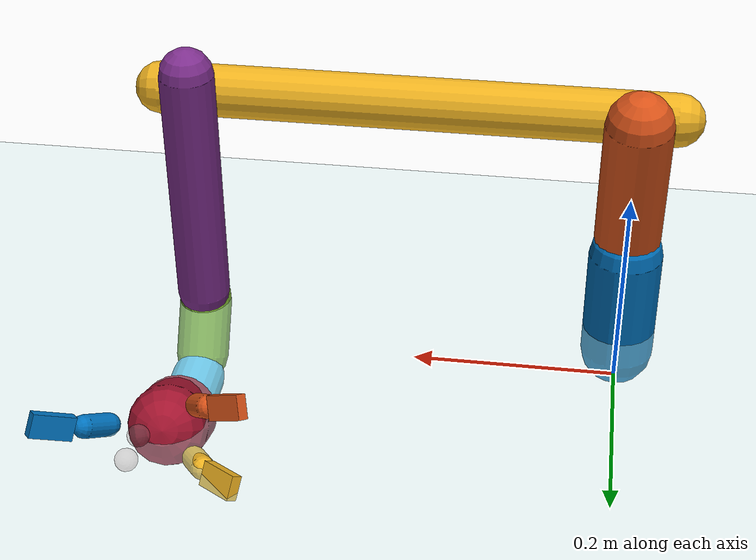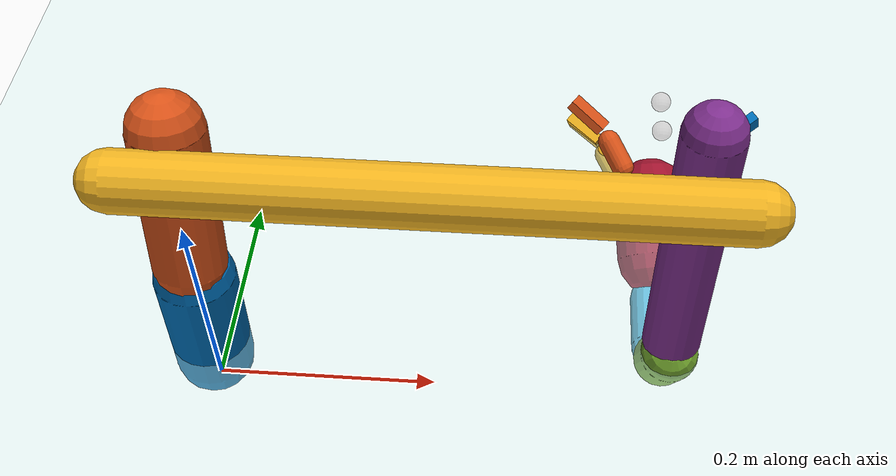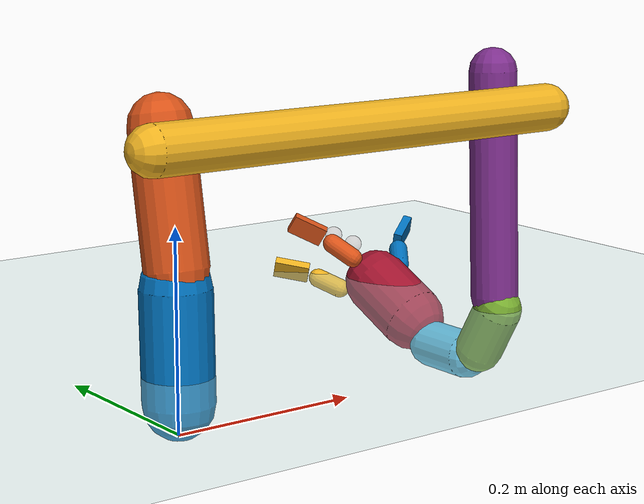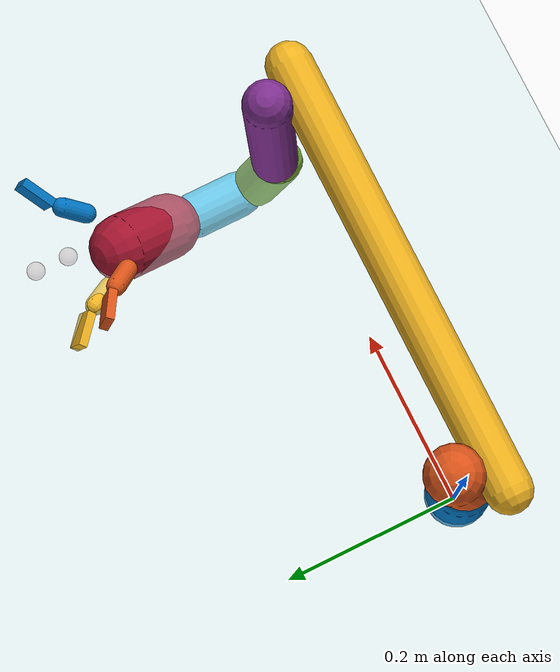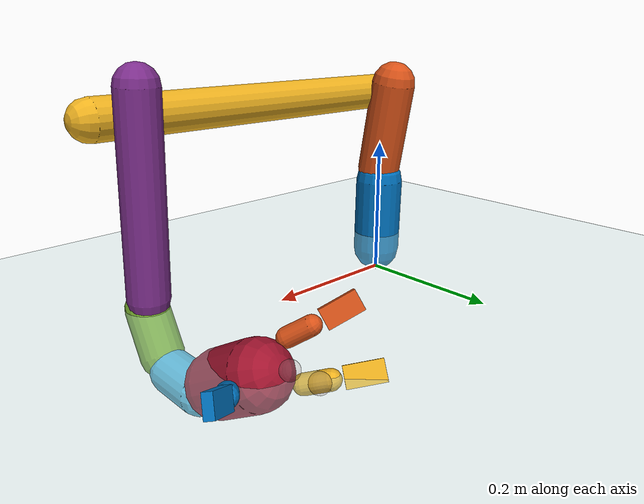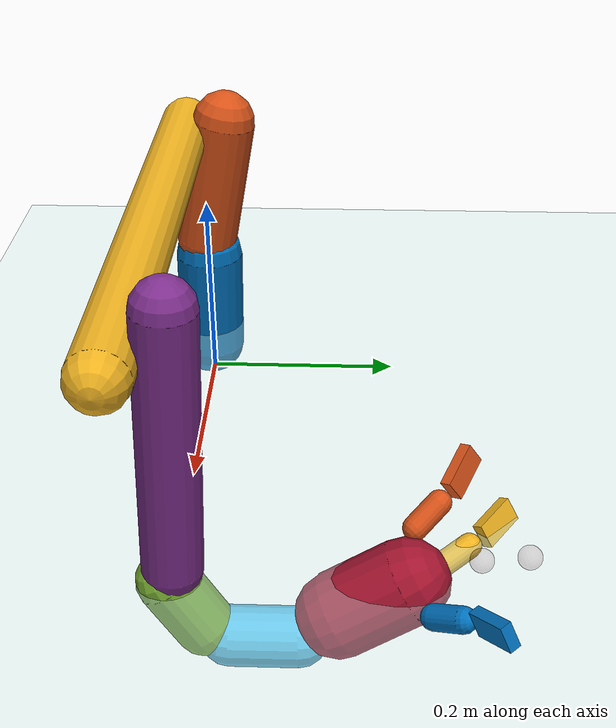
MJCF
<mujoco model='jaco'>
  <compiler coordinate='local' angle='radian' eulerseq='yxz'/>

  <contact>
    <exclude body1='b_base' body2='b_1'/>
    <exclude body1='b_finger_1' body2='b_finger_2'/>
    <exclude body1='b_finger_1' body2='b_finger_3'/>
    <exclude body1='b_finger_2' body2='b_finger_3'/>
  </contact>

  <default>
    <geom contype='1' conaffinity='1' condim='3' friction='.1 .1' solimp='.95 .98 .0005' solref='0.02 1.1' density='1'/>
    <joint type='hinge' armature='0' damping='0'
      solimpfriction='.95 .95 0' solreffriction='.02 1' solimplimit='0 .99 .01' solreflimit='.02 1'/>
    <default class='finger'>
      <joint frictionloss='0.1' armature='.1' axis='0 0 1' limited='true' range='-0.15 1.2' damping='.1'/>
      <velocity kv='0.5' ctrlrange='-1 1' gear='1' forcerange='-1.5 1.5'/>
      <geom type='capsule' size="0.0108231 0.0145116" pos="0.0190913 -0.0112192 1.10387e-06" quat="0.475811 -0.475815 0.523071 -0.523068"/>
    </default>
    <default class='fingertip'>
      <geom type='box' pos='0.065 -0.022 0' size='0.02 .005 .011' rgba='1 0 0 1'
            quat='1 0 0 -0.235' condim='4' />
      <site type='ellipsoid' pos='0.065 -0.022 0' size='0.02 .005 .011'
            quat='1 0 0 -0.235'/>
    </default>
  </default>

  <worldbody>
    <geom name='ground' type='plane' pos='0 0 0.06' size='1 1 1' rgba='0.78 0.93 0.92 1.0' margin='0.1' gap='0.1' />
    <body name='b_base' pos='0 0 0.005'>
      <inertial pos='-0.000132925 -0.000516418 0.0820911' quat='0.6951 -0.00714556 0.00738537 0.71884' mass='0.00718278' diaginertia='0.00157301 0.00157269 0.00058831' />
      <geom name='base' rgba='0 0.4470 0.7410 1' type='capsule' size="0.0350512 0.0555543" pos="-0.000132925 -0.000516418 0.0820911" quat="0.6951 -0.00714564 0.00738544 0.71884" />
      <body name='b_1' pos='0 0 0.1535' quat='0 0 1 0'>
        <inertial pos='-3.49946e-005 0.010651 -0.0670012' quat='0.704277 0.0627825 -0.0628 0.70435' mass='0.00644357' diaginertia='0.00172311 0.00163259 0.00042883' />
        <joint name='joint_1' axis='0 0 -1' />
        <geom name='link_1' rgba='0.8500 0.3250 0.0980 1' type='capsule' size="0.031417 0.0668352" pos="-3.49946e-05 0.010651 -0.0670012" quat="0.704277 0.0627825 -0.0628 0.70435" />
        <body name='b_2' pos='0 0 -0.1185' quat='0 0 1 1'>
          <inertial pos='0.205004 7.5835e-005 -0.0202812' quat='2.24027e-006 0.707108 5.30493e-006 0.707106' mass='0.011691' diaginertia='0.0253426 0.0250512 0.000536357' />
          <joint name='joint_2' axis='0 0 1' range='-3.4906585 0.34906585' limited='true' />
          <geom name='link_2' rgba='0.9290 0.6940 0.1250 1' type='capsule' size="0.0251592 0.240341" pos="0.205004 7.5835e-05 -0.0202812" quat="2.23957e-06 0.707108 5.30416e-06 0.707106" />
          <body name='b_3' pos='0.41 0 0' quat='0 0.707107 0.707107 0'>
            <inertial pos='0.0843942 7.48909e-006 -0.0177123' quat='-4.64469e-005 0.692702 -4.11798e-005 0.721224' mass='0.00673417' diaginertia='0.00420255 0.00409328 0.000303584' />
            <joint name='joint_3' axis='0 0 -1' range='-4.01425728 0.872664626' limited='true' />
            <geom name='link_3' rgba='0.4940 0.1840 0.5560 1' type='capsule' size="0.0255647 0.120643" pos="0.0843942 7.48907e-06 -0.0177123" quat="-4.64475e-05 0.692702 -4.11814e-05 0.721224" />
            <body name='b_4' pos='0.207 0 -0.01125' quat='0 0.707107 0 -0.707107'>
              <inertial pos='0.0101659 -4.64261e-005 -0.0369867' quat='0.965925 1.91737e-005 -0.258823 -1.40769e-005' mass='0.00221423' diaginertia='0.0001816 0.000174586 9.79319e-005' />
              <joint name='joint_4' axis='0 0 -1' />
              <geom name='link_4' rgba='0.4660 0.6740 0.1880 1' type='capsule' size="0.0257405 0.0289568" pos="0.0101659 -4.64261e-05 -0.0369867" quat="0.965925 1.43712e-05 -0.258823 3.85082e-06" />
              <body name='b_5' pos='0.037 0 -0.06408' quat='0.866025 0 -0.5 0'>
                <inertial pos='0.0101659 -4.64261e-005 -0.0369867' quat='0.965925 1.91737e-005 -0.258823 -1.40769e-005' mass='0.00221423' diaginertia='0.0001816 0.000174586 9.79319e-005' />
                <joint name='joint_5' axis='0 0 -1' />
                <geom name='link_5' rgba='0.3010 0.7450 0.9330 1' type='capsule' size="0.0257405 0.0289568" pos="0.0101659 -4.64261e-05 -0.0369867" quat="0.965925 1.43712e-05 -0.258823 3.85082e-06" />
                <body name='b_hand' pos='0.037 0 -0.06408' quat='0.612372 -0.353553 -0.353553 0.612372'>
                  <site type='sphere' size='.01' name='gripsite' pos='0 0 -.16' rgba='.5 .5 .5 .3' />
                  <site type='sphere' size='.01' name='pinchsite' pos='0 0.015 -0.195' rgba='.5 .5 .5 .3' />
                  <inertial pos='0.00628384 -2.92087e-005 -0.0608681' quat='0.708562 -0.0338601 -0.0358744 0.703923' mass='0.00547172' diaginertia='0.000759818 0.000676099 0.0004995' />
                  <joint name='joint_6' axis='0 0 -1' range='-6.28319 6.28319'  limited='false'/>
                  <geom name='link_6' rgba='0.6350 0.0780 0.1840 1' type='capsule' size="0.0368731 0.0322296" pos="0.00628384 -2.92087e-05 -0.0608681" quat="0.708562 -0.0338601 -0.0358744 0.703923"/>
                  <body name='b_finger_1' childclass='finger' pos='-0.029 .003 -0.1145' quat='-0.414818 -0.329751 -0.663854 0.52772'>
                    <inertial pos='0.0485761 -0.000715511 0' quat='0.507589 0.507348 0.492543 0.492294' mass='0.000379077' diaginertia='4.00708e-005 4.00527e-005 2.156e-006' />
                    <joint name='joint_finger_1'/>
                    <geom name='finger_knuckle_1' rgba='0 0.4470 0.7410 1'/>
                    <geom class='fingertip' name='finger_tip_1' rgba='0 0.4470 0.7410 1'/>
                    <site class='fingertip' name='fingertip1'/>
                  </body>
                  <body name='b_finger_2' childclass='finger' pos='0.0295 0.0216 -0.115' quat='0.561254 -0.620653 0.321748 0.443014'>
                    <inertial pos='0.0485761 -0.000715511 0' quat='0.507589 0.507348 0.492543 0.492294' mass='0.000379077' diaginertia='4.00708e-005 4.00527e-005 2.156e-006' />
                    <joint name='joint_finger_2'/>
                    <geom name='finger_knuckle_2' rgba='0.9290 0.6940 0.1250 1'/>
                    <geom class='fingertip' name='finger_tip_2' rgba='0.9290 0.6940 0.1250 1'/>
                    <site class='fingertip' name='fingertip2'/>
                  </body>
                  <body name='b_finger_3' childclass='finger' pos='0.0295 -0.0216 -0.1145' quat='0.625248 -0.567602 0.434845 0.312735'>
                    <inertial pos='0.0485761 -0.000715511 0' quat='0.507589 0.507348 0.492543 0.492294' mass='0.000379077' diaginertia='4.00708e-005 4.00527e-005 2.156e-006' />
                    <joint name='joint_finger_3'/>
                    <geom name='finger_knuckle_3' rgba='0.8500 0.3250 0.0980 1'/>
                    <geom class='fingertip' name='finger_tip_3' rgba='0.8500 0.3250 0.0980 1'/>
                    <site class='fingertip' name='fingertip3'/>
                  </body>
                </body>
              </body>
            </body>
          </body>
        </body>
      </body>
    </body>
  </worldbody>

</mujoco>
